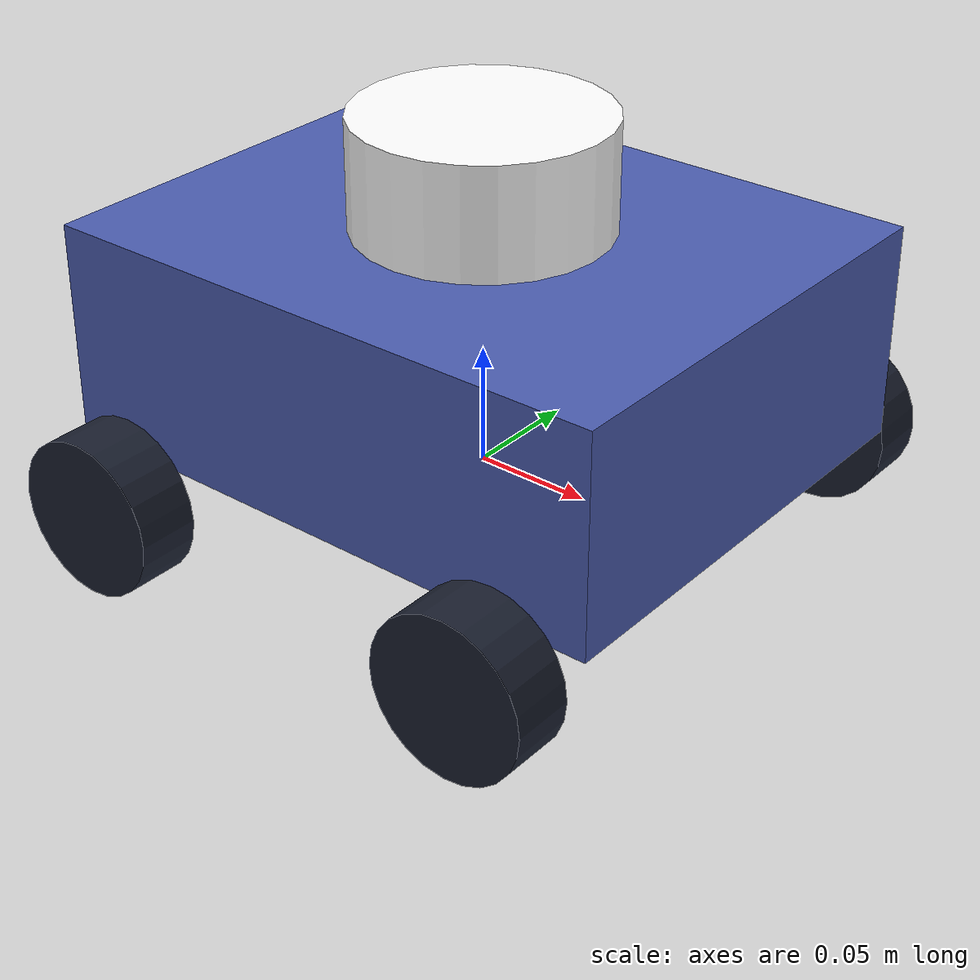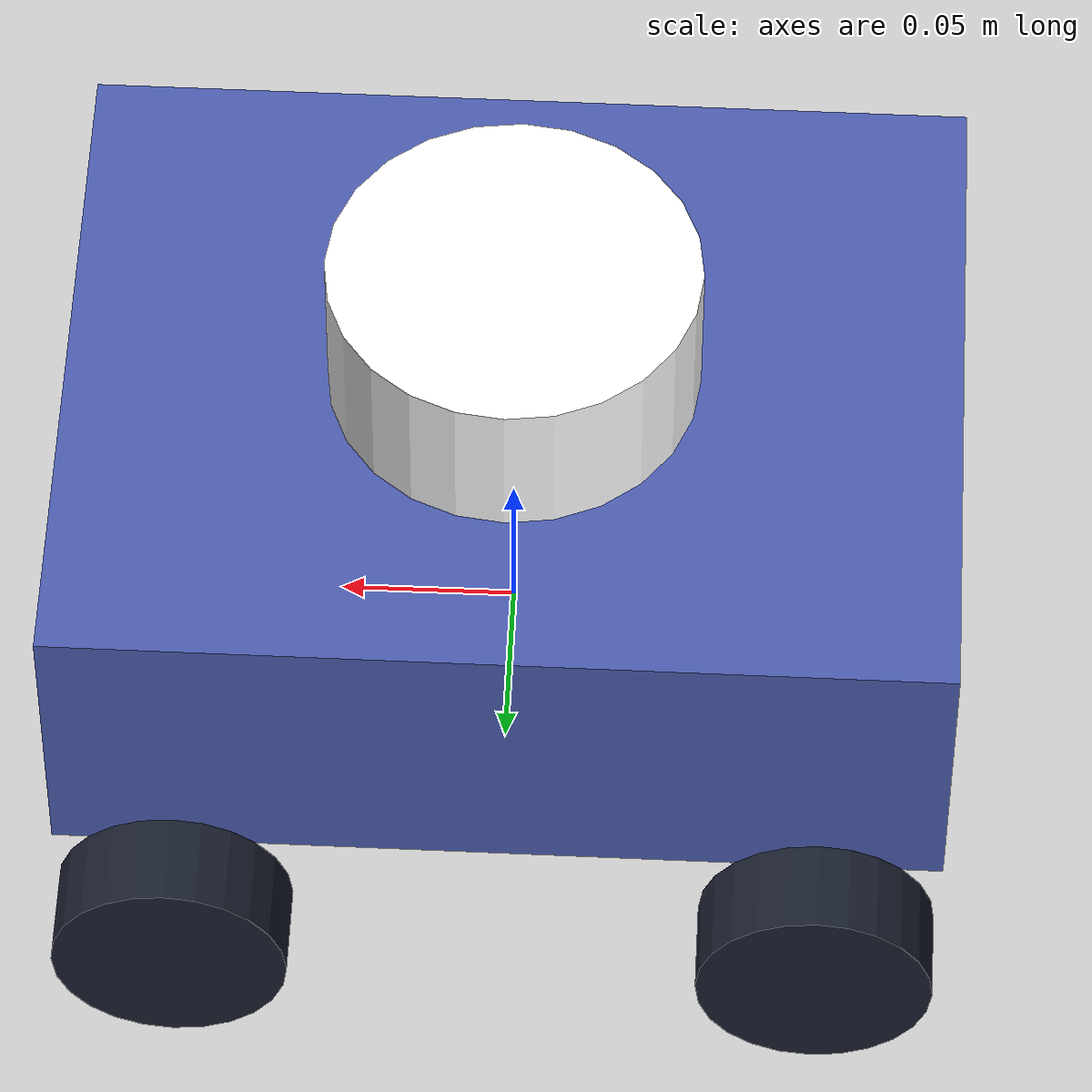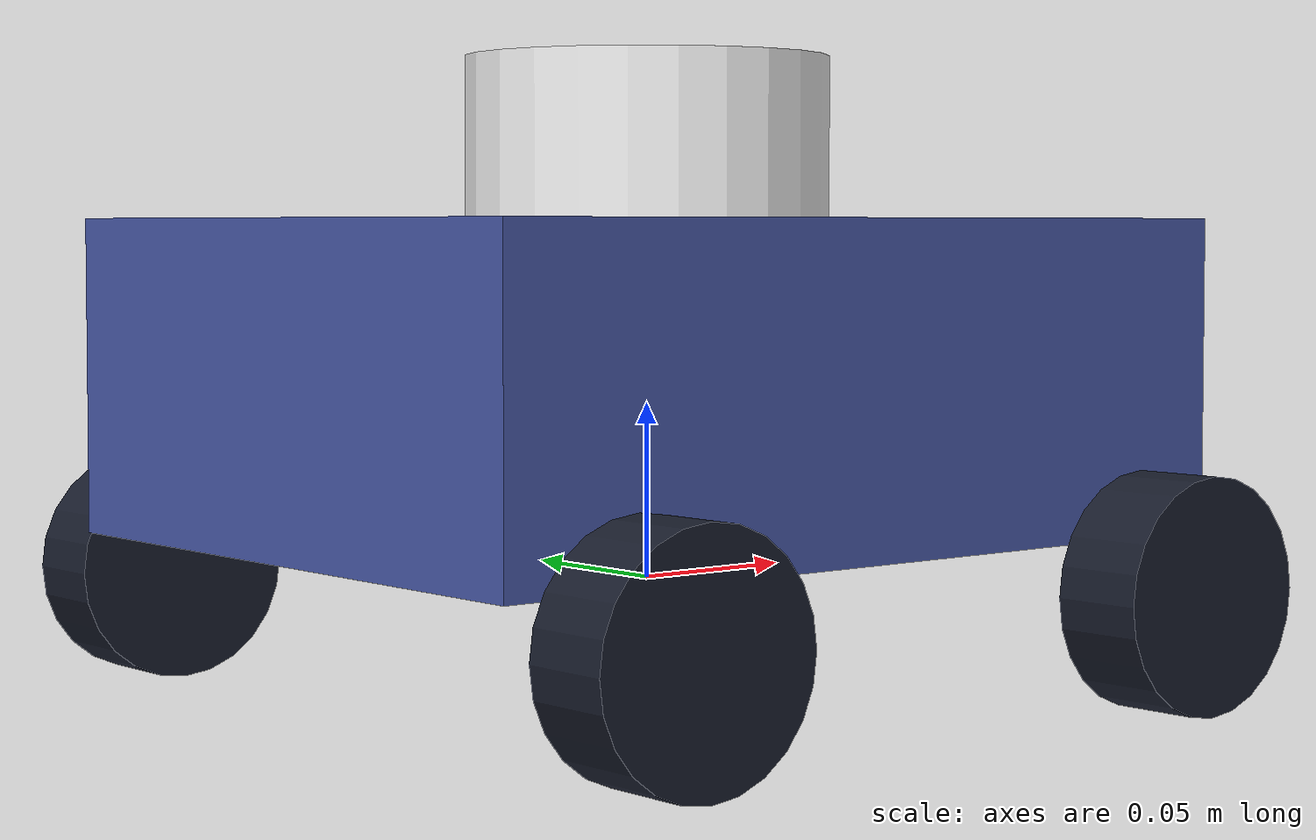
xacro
<?xml version="1.0"?>
<robot name="easybot" xmlns:xacro="http://ros.org/wiki/xacro">

  <!-- ═══════════════════════════════════════════════
       MATERIALS
  ═══════════════════════════════════════════════ -->
    <material name="chassis_material">
      <color rgba="0.29 0.36 0.68 1.0"/>
    </material>
    <material name="wheel_material">
      <color rgba="0.10 0.12 0.18 1.0"/>
    </material>
    <material name="caster_material">
      <color rgba="0.53 0.53 0.53 1.0"/>
    </material>
    <material name="lidar_material">
      <color rgba="1.0 1.0 1.0 1.0"/>
    </material>
    <material name="camera_material">
      <color rgba="0.02 0.84 0.63 1.0"/>
    </material>
    <material name="depth_camera_material">
      <color rgba="0.07 0.54 0.70 1.0"/>
    </material>
    <material name="imu_material">
      <color rgba="0.94 0.28 0.44 1.0"/>
    </material>

  <!-- ═══════════════════════════════════════════════
       LINKS
  ═══════════════════════════════════════════════ -->
    <!-- base_link: virtual root, position at ground contact point -->
    <link name="base_link"/>
    <link name="chassis">
      <inertial>
        <origin xyz="0 0 0" rpy="0 0 0"/>
        <mass value="4.000000"/>
        <inertia ixx="0.016033" ixy="0.000000" ixz="0.000000"
                 iyy="0.023533" iyz="0.000000"
                 izz="0.034167"/>
      </inertial>
      <visual>
        <origin xyz="0 0 0" rpy="0 0 0"/>
        <geometry>
          <box size="0.250000 0.200000 0.090000"/>
        </geometry>
        <material name="chassis_material"/>
      </visual>
      <collision>
        <origin xyz="0 0 0" rpy="0 0 0"/>
        <geometry>
          <box size="0.250000 0.200000 0.090000"/>
        </geometry>
      </collision>
    </link>
    <link name="front_left_wheel">
      <inertial>
        <origin xyz="0 0 0" rpy="0 0 0"/>
        <mass value="0.250000"/>
        <inertia ixx="0.000082" ixy="0.000000" ixz="0.000000"
                 iyy="0.000082" iyz="0.000000"
                 izz="0.000136"/>
      </inertial>
      <visual>
        <origin xyz="0 0 0" rpy="1.5707963 0 0"/>
        <geometry>
          <cylinder radius="0.033000" length="0.026000"/>
        </geometry>
        <material name="wheel_material"/>
      </visual>
      <collision>
        <origin xyz="0 0 0" rpy="1.5707963 0 0"/>
        <geometry>
          <cylinder radius="0.033000" length="0.026000"/>
        </geometry>
      </collision>
    </link>
    <link name="front_right_wheel">
      <inertial>
        <origin xyz="0 0 0" rpy="0 0 0"/>
        <mass value="0.250000"/>
        <inertia ixx="0.000082" ixy="0.000000" ixz="0.000000"
                 iyy="0.000082" iyz="0.000000"
                 izz="0.000136"/>
      </inertial>
      <visual>
        <origin xyz="0 0 0" rpy="1.5707963 0 0"/>
        <geometry>
          <cylinder radius="0.033000" length="0.026000"/>
        </geometry>
        <material name="wheel_material"/>
      </visual>
      <collision>
        <origin xyz="0 0 0" rpy="1.5707963 0 0"/>
        <geometry>
          <cylinder radius="0.033000" length="0.026000"/>
        </geometry>
      </collision>
    </link>
    <link name="rear_left_wheel">
      <inertial>
        <origin xyz="0 0 0" rpy="0 0 0"/>
        <mass value="0.250000"/>
        <inertia ixx="0.000082" ixy="0.000000" ixz="0.000000"
                 iyy="0.000082" iyz="0.000000"
                 izz="0.000136"/>
      </inertial>
      <visual>
        <origin xyz="0 0 0" rpy="1.5707963 0 0"/>
        <geometry>
          <cylinder radius="0.033000" length="0.026000"/>
        </geometry>
        <material name="wheel_material"/>
      </visual>
      <collision>
        <origin xyz="0 0 0" rpy="1.5707963 0 0"/>
        <geometry>
          <cylinder radius="0.033000" length="0.026000"/>
        </geometry>
      </collision>
    </link>
    <link name="rear_right_wheel">
      <inertial>
        <origin xyz="0 0 0" rpy="0 0 0"/>
        <mass value="0.250000"/>
        <inertia ixx="0.000082" ixy="0.000000" ixz="0.000000"
                 iyy="0.000082" iyz="0.000000"
                 izz="0.000136"/>
      </inertial>
      <visual>
        <origin xyz="0 0 0" rpy="1.5707963 0 0"/>
        <geometry>
          <cylinder radius="0.033000" length="0.026000"/>
        </geometry>
        <material name="wheel_material"/>
      </visual>
      <collision>
        <origin xyz="0 0 0" rpy="1.5707963 0 0"/>
        <geometry>
          <cylinder radius="0.033000" length="0.026000"/>
        </geometry>
      </collision>
    </link>

    <link name="lidar_1">
      <inertial>
        <origin xyz="0 0 0" rpy="0 0 0"/>
        <mass value="0.200000"/>
        <inertia ixx="0.000222" ixy="0.000000" ixz="0.000000"
                 iyy="0.000222" iyz="0.000000"
                 izz="0.000270"/>
      </inertial>
      <visual>
        <origin xyz="0 0 0" rpy="0 0 0"/>
        <geometry>
          <cylinder radius="0.052000" length="0.072000"/>
        </geometry>
        <material name="lidar_material"/>
      </visual>
      <collision>
        <origin xyz="0 0 0" rpy="0 0 0"/>
        <geometry>
          <cylinder radius="0.052000" length="0.072000"/>
        </geometry>
      </collision>
    </link>

  <!-- ═══════════════════════════════════════════════
       JOINTS
  ═══════════════════════════════════════════════ -->
    <joint name="base_link_to_chassis" type="fixed">
      <parent link="base_link"/>
      <child link="chassis"/>
      <origin xyz="0.000000 0.000000 0.058000" rpy="0.000000 0.000000 0.000000"/>
    </joint>
    <joint name="chassis_to_front_left_wheel" type="continuous">
      <parent link="chassis"/>
      <child link="front_left_wheel"/>
      <origin xyz="0.090000 0.120000 -0.058000" rpy="0.000000 0.000000 0.000000"/>
      <axis xyz="0 1 0"/>
    </joint>
    <joint name="chassis_to_front_right_wheel" type="continuous">
      <parent link="chassis"/>
      <child link="front_right_wheel"/>
      <origin xyz="0.090000 -0.120000 -0.058000" rpy="0.000000 0.000000 0.000000"/>
      <axis xyz="0 1 0"/>
    </joint>
    <joint name="chassis_to_rear_left_wheel" type="continuous">
      <parent link="chassis"/>
      <child link="rear_left_wheel"/>
      <origin xyz="-0.090000 0.120000 -0.058000" rpy="0.000000 0.000000 0.000000"/>
      <axis xyz="0 1 0"/>
    </joint>
    <joint name="chassis_to_rear_right_wheel" type="continuous">
      <parent link="chassis"/>
      <child link="rear_right_wheel"/>
      <origin xyz="-0.090000 -0.120000 -0.058000" rpy="0.000000 0.000000 0.000000"/>
      <axis xyz="0 1 0"/>
    </joint>
    <joint name="chassis_to_lidar_1" type="fixed">
      <parent link="chassis"/>
      <child link="lidar_1"/>
      <origin xyz="0.000000 0.000000 0.055000" rpy="0.000000 0.000000 0.000000"/>
    </joint>

    <!-- ═══════════════════════════════════════════════
       Archivo que conecta con el xacro de gazebo para realizar la simulacion
  ═══════════════════════════════════════════════ -->
  <xacro:include filename="easybot_gazebo.xacro" />

</robot>
